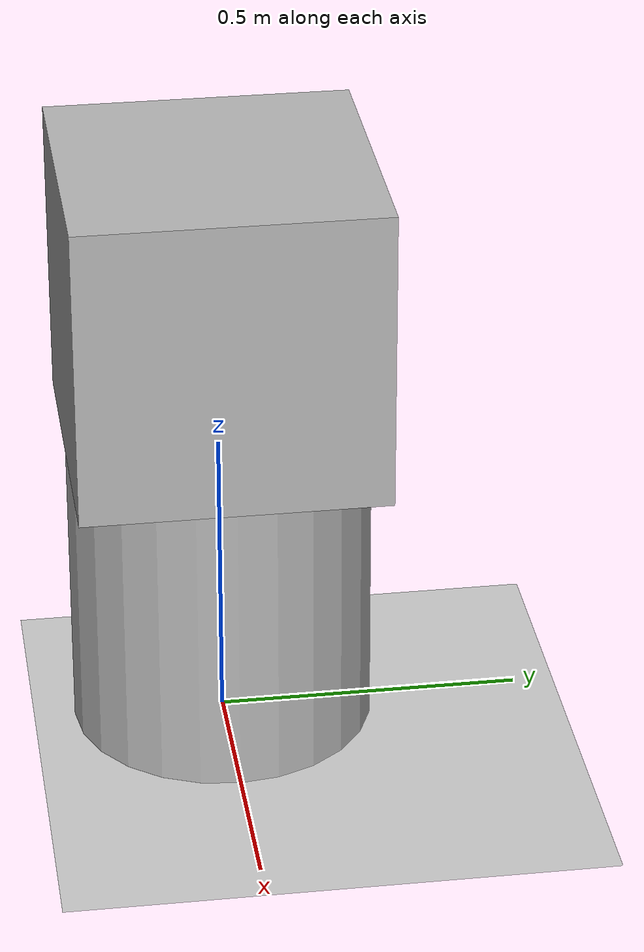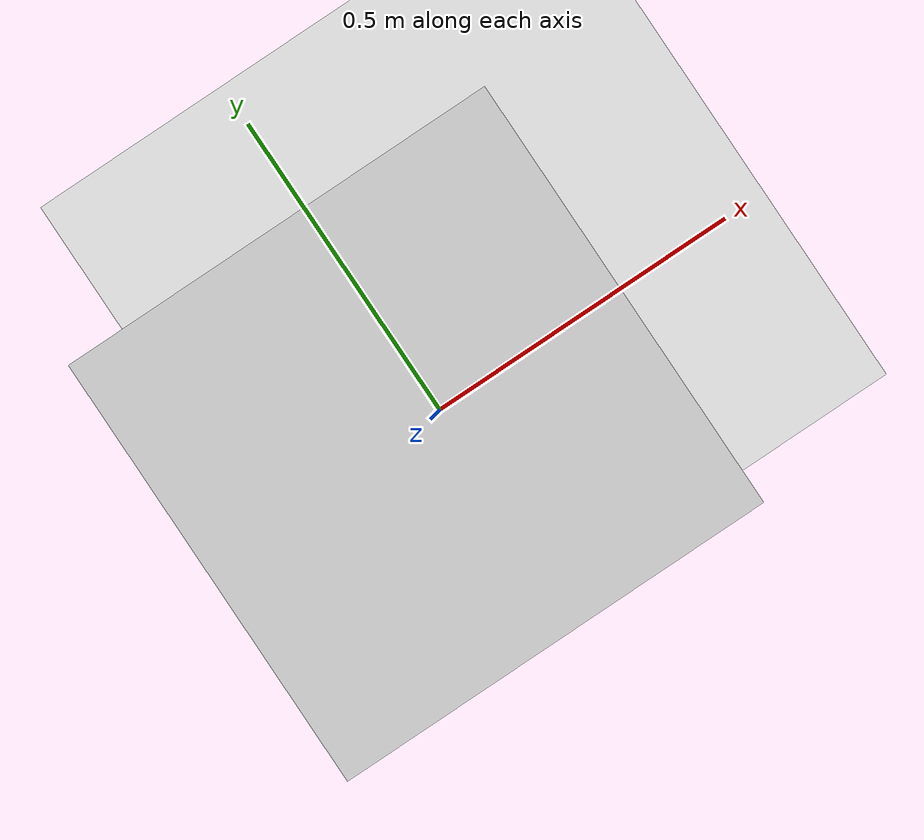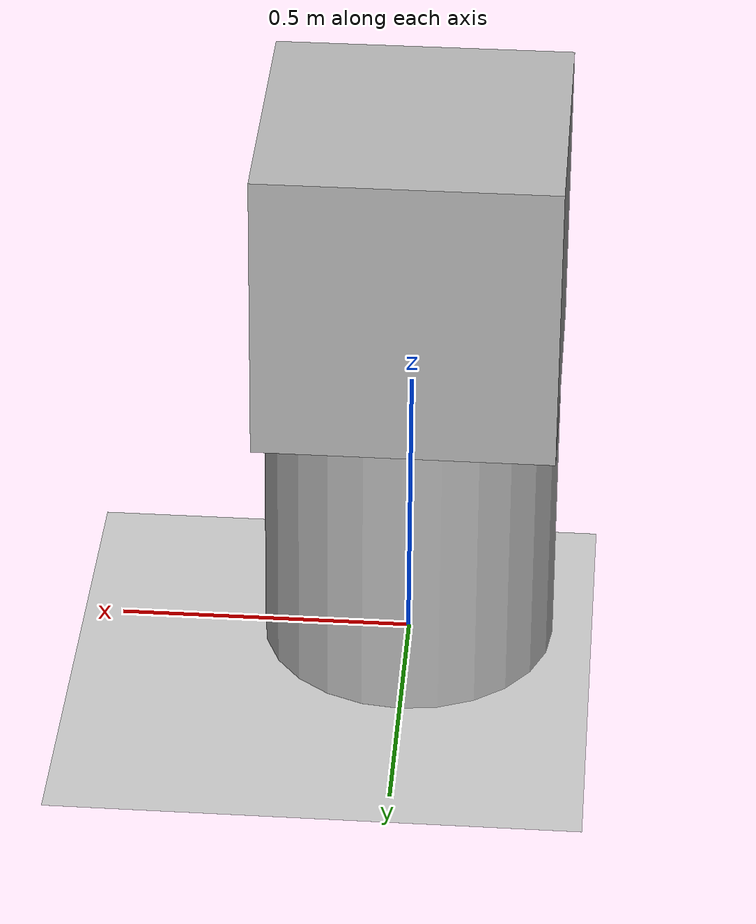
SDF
<?xml version="1.0" encoding="UTF-8"?>
<sdf version='1.6'>
  <world name='default'>
    <include>
      <uri>model://ground_plane</uri>
    </include>
    <model name='light_model'>
      <static>1</static>
      <link name='cyl'>
        <pose frame=''>0 0 0.25 0 -0 0</pose>
        <collision name='collision'>
          <geometry>
            <cylinder>
              <radius>0.25</radius>
              <length>0.5</length>
            </cylinder>
          </geometry>
        </collision>
        <visual name='visual'>
          <geometry>
            <cylinder>
              <radius>0.25</radius>
              <length>0.5</length>
            </cylinder>
          </geometry>
        </visual>
        <light name='light_source1' type='spot'>
          <pose frame=''>0.25 0 0.25 0 -0.7854 0</pose>
          <attenuation>
            <range>30</range>
            <linear>0.05</linear>
          </attenuation>
          <diffuse>1 0 0 1</diffuse>
          <specular>1 0 0 1</specular>
          <spot>
            <inner_angle>0.3</inner_angle>
            <outer_angle>0.35</outer_angle>
            <falloff>1</falloff>
          </spot>
          <direction>0 0 -1</direction>
        </light>
        <light name='light_source2' type='spot'>
          <pose frame=''>-0.25 0 0.25 0 0.7854 0</pose>
          <attenuation>
            <range>30</range>
            <linear>0.05</linear>
          </attenuation>
          <diffuse>0 1 0 1</diffuse>
          <specular>0 1 0 1</specular>
          <spot>
            <inner_angle>0.3</inner_angle>
            <outer_angle>0.35</outer_angle>
            <falloff>1</falloff>
          </spot>
          <direction>0 0 -1</direction>
        </light>
      </link>
      <link name='box'>
        <pose frame=''>0 0 0.75 0 -0 0</pose>
        <collision name='collision'>
          <geometry>
            <box>
              <size>0.5 0.5 0.5</size>
            </box>
          </geometry>
        </collision>
        <visual name='visual'>
          <geometry>
            <box>
              <size>0.5 0.5 0.5</size>
            </box>
          </geometry>
        </visual>
        <light name='light_source3' type='spot'>
          <pose frame=''>0 0.25 0.25 0.7854 -0 0</pose>
          <attenuation>
            <range>30</range>
            <linear>0.05</linear>
          </attenuation>
          <diffuse>0 0 1 1</diffuse>
          <specular>0 0 1 1</specular>
          <spot>
            <inner_angle>0.3</inner_angle>
            <outer_angle>0.35</outer_angle>
            <falloff>1</falloff>
          </spot>
          <direction>0 0 -1</direction>
        </light>
        <light name='light_source4' type='spot'>
          <pose frame=''>0 -0.25 0.25 -0.7854 0 0</pose>
          <attenuation>
            <range>30</range>
            <linear>0.05</linear>
          </attenuation>
          <diffuse>1 1 0 1</diffuse>
          <specular>1 1 0 1</specular>
          <spot>
            <inner_angle>0.3</inner_angle>
            <outer_angle>0.35</outer_angle>
            <falloff>1</falloff>
          </spot>
          <direction>0 0 -1</direction>
        </light>
      </link>
      <joint name='joint' type='fixed'>
        <parent>cyl</parent>
        <child>box</child>
      </joint>
      <plugin name='light_control' filename='libMyFlashLightPlugin.so'>
        <enable>true</enable>
        <light>
          <id>cyl/light_source1</id>
          <duration>0.1</duration>
          <interval>0</interval>
          <color>0 1 0</color>
        </light>
        <light>
          <id>cyl/light_source2</id>
          <duration>0.1</duration>
          <interval>0</interval>
          <color>1 0 0</color>
        </light>
        <light>
          <id>box/light_source3</id>
          <duration>1.0</duration>
          <interval>0.1</interval>
          <enable>false</enable>
        </light>
        <light>
          <id>box/light_source4</id>
          <block>
            <duration>0.5</duration>
            <interval>0.0</interval>
            <color>1 1 0</color>
          </block>
          <block>
            <duration>0.5</duration>
            <interval>0.0</interval>
            <color>0 1 1</color>
          </block>
          <block>
            <duration>0.5</duration>
            <interval>0.0</interval>
            <color>1 0 1</color>
          </block>
          <enable>true</enable>
        </light>
      </plugin>
    </model>
  </world>
</sdf>
